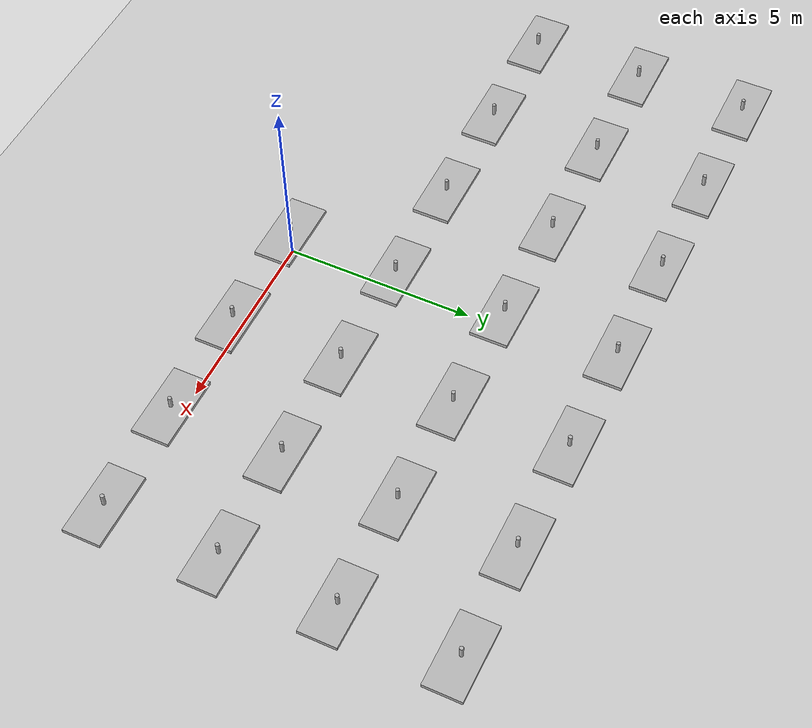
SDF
<sdf version="1.7">
 <world name="classroom_world">
  <model name="ground_plane">
   <static>1</static>
   <link name="link">
    <collision name="collision">
     <geometry><plane><normal>0 0 1</normal><size>100 100</size></plane></geometry>
     <surface><friction><ode><mu>100</mu><mu2>50</mu2></ode></friction></surface>
    </collision>
    <visual name="visual">
     <cast_shadows>0</cast_shadows>
     <geometry><plane><normal>0 0 1</normal><size>100 100</size></plane></geometry>
     <material>
      <script><uri>file://media/materials/scripts/gazebo.material</uri><name>Gazebo/Grey</name></script>
     </material>
    </visual>
   </link>
  </model>
  <model name="table_r4_c4">
   <static>1</static>
   <link name="link">
    <visual name="top"><geometry><box><size>2 1 0.1</size></box></geometry></visual>
    <collision name="top_col"><geometry><box><size>2 1 0.1</size></box></geometry></collision>
    <pose>0 0 0.75 0 -0 0</pose>
    <visual name="leg1">
     <geometry><cylinder><radius>0.05</radius><length>0.75</length></cylinder></geometry>
    </visual>
    <collision name="leg1_col">
     <geometry><cylinder><radius>0.05</radius><length>0.75</length></cylinder></geometry>
    </collision>
    <pose>-1 -0.5 0.375 0 -0 0</pose>
    <visual name="leg2">
     <geometry><cylinder><radius>0.05</radius><length>0.75</length></cylinder></geometry>
    </visual>
    <collision name="leg2_col">
     <geometry><cylinder><radius>0.05</radius><length>0.75</length></cylinder></geometry>
    </collision>
    <pose>1 -0.5 0.375 0 -0 0</pose>
    <visual name="leg3">
     <geometry><cylinder><radius>0.05</radius><length>0.75</length></cylinder></geometry>
    </visual>
    <collision name="leg3_col">
     <geometry><cylinder><radius>0.05</radius><length>0.75</length></cylinder></geometry>
    </collision>
    <pose>-1 0.5 0.375 0 -0 0</pose>
    <visual name="leg4">
     <geometry><cylinder><radius>0.05</radius><length>0.75</length></cylinder></geometry>
    </visual>
    <collision name="leg4_col">
     <geometry><cylinder><radius>0.05</radius><length>0.75</length></cylinder></geometry>
    </collision>
    <pose>1 0.5 0.375 0 -0 0</pose>
   </link>
  </model>
  <model name="table_r4_c5">
   <static>1</static>
   <link name="link">
    <visual name="top"><geometry><box><size>2 1 0.1</size></box></geometry></visual>
    <collision name="top_col"><geometry><box><size>2 1 0.1</size></box></geometry></collision>
    <pose>3 0 0.75 0 -0 0</pose>
    <visual name="leg1">
     <geometry><cylinder><radius>0.05</radius><length>0.75</length></cylinder></geometry>
    </visual>
    <collision name="leg1_col">
     <geometry><cylinder><radius>0.05</radius><length>0.75</length></cylinder></geometry>
    </collision>
    <pose>2 -0.5 0.375 0 -0 0</pose>
    <visual name="leg2">
     <geometry><cylinder><radius>0.05</radius><length>0.75</length></cylinder></geometry>
    </visual>
    <collision name="leg2_col">
     <geometry><cylinder><radius>0.05</radius><length>0.75</length></cylinder></geometry>
    </collision>
    <pose>4 -0.5 0.375 0 -0 0</pose>
    <visual name="leg3">
     <geometry><cylinder><radius>0.05</radius><length>0.75</length></cylinder></geometry>
    </visual>
    <collision name="leg3_col">
     <geometry><cylinder><radius>0.05</radius><length>0.75</length></cylinder></geometry>
    </collision>
    <pose>2 0.5 0.375 0 -0 0</pose>
    <visual name="leg4">
     <geometry><cylinder><radius>0.05</radius><length>0.75</length></cylinder></geometry>
    </visual>
    <collision name="leg4_col">
     <geometry><cylinder><radius>0.05</radius><length>0.75</length></cylinder></geometry>
    </collision>
    <pose>4 0.5 0.375 0 -0 0</pose>
   </link>
  </model>
  <model name="table_r4_c6">
   <static>1</static>
   <link name="link">
    <visual name="top"><geometry><box><size>2 1 0.1</size></box></geometry></visual>
    <collision name="top_col"><geometry><box><size>2 1 0.1</size></box></geometry></collision>
    <pose>6 0 0.75 0 -0 0</pose>
    <visual name="leg1">
     <geometry><cylinder><radius>0.05</radius><length>0.75</length></cylinder></geometry>
    </visual>
    <collision name="leg1_col">
     <geometry><cylinder><radius>0.05</radius><length>0.75</length></cylinder></geometry>
    </collision>
    <pose>5 -0.5 0.375 0 -0 0</pose>
    <visual name="leg2">
     <geometry><cylinder><radius>0.05</radius><length>0.75</length></cylinder></geometry>
    </visual>
    <collision name="leg2_col">
     <geometry><cylinder><radius>0.05</radius><length>0.75</length></cylinder></geometry>
    </collision>
    <pose>7 -0.5 0.375 0 -0 0</pose>
    <visual name="leg3">
     <geometry><cylinder><radius>0.05</radius><length>0.75</length></cylinder></geometry>
    </visual>
    <collision name="leg3_col">
     <geometry><cylinder><radius>0.05</radius><length>0.75</length></cylinder></geometry>
    </collision>
    <pose>5 0.5 0.375 0 -0 0</pose>
    <visual name="leg4">
     <geometry><cylinder><radius>0.05</radius><length>0.75</length></cylinder></geometry>
    </visual>
    <collision name="leg4_col">
     <geometry><cylinder><radius>0.05</radius><length>0.75</length></cylinder></geometry>
    </collision>
    <pose>7 0.5 0.375 0 -0 0</pose>
   </link>
  </model>
  <model name="table_r4_c7">
   <static>1</static>
   <link name="link">
    <visual name="top"><geometry><box><size>2 1 0.1</size></box></geometry></visual>
    <collision name="top_col"><geometry><box><size>2 1 0.1</size></box></geometry></collision>
    <pose>9 0 0.75 0 -0 0</pose>
    <visual name="leg1">
     <geometry><cylinder><radius>0.05</radius><length>0.75</length></cylinder></geometry>
    </visual>
    <collision name="leg1_col">
     <geometry><cylinder><radius>0.05</radius><length>0.75</length></cylinder></geometry>
    </collision>
    <pose>8 -0.5 0.375 0 -0 0</pose>
    <visual name="leg2">
     <geometry><cylinder><radius>0.05</radius><length>0.75</length></cylinder></geometry>
    </visual>
    <collision name="leg2_col">
     <geometry><cylinder><radius>0.05</radius><length>0.75</length></cylinder></geometry>
    </collision>
    <pose>10 -0.5 0.375 0 -0 0</pose>
    <visual name="leg3">
     <geometry><cylinder><radius>0.05</radius><length>0.75</length></cylinder></geometry>
    </visual>
    <collision name="leg3_col">
     <geometry><cylinder><radius>0.05</radius><length>0.75</length></cylinder></geometry>
    </collision>
    <pose>8 0.5 0.375 0 -0 0</pose>
    <visual name="leg4">
     <geometry><cylinder><radius>0.05</radius><length>0.75</length></cylinder></geometry>
    </visual>
    <collision name="leg4_col">
     <geometry><cylinder><radius>0.05</radius><length>0.75</length></cylinder></geometry>
    </collision>
    <pose>10 0.5 0.375 0 -0 0</pose>
   </link>
  </model>
  <model name="table_r5_c1">
   <static>1</static>
   <link name="link">
    <visual name="top"><geometry><box><size>2 1 0.1</size></box></geometry></visual>
    <collision name="top_col"><geometry><box><size>2 1 0.1</size></box></geometry></collision>
    <pose>-9 3 0.75 0 -0 0</pose>
    <visual name="leg1">
     <geometry><cylinder><radius>0.05</radius><length>0.75</length></cylinder></geometry>
    </visual>
    <collision name="leg1_col">
     <geometry><cylinder><radius>0.05</radius><length>0.75</length></cylinder></geometry>
    </collision>
    <pose>-10 2.5 0.375 0 -0 0</pose>
    <visual name="leg2">
     <geometry><cylinder><radius>0.05</radius><length>0.75</length></cylinder></geometry>
    </visual>
    <collision name="leg2_col">
     <geometry><cylinder><radius>0.05</radius><length>0.75</length></cylinder></geometry>
    </collision>
    <pose>-8 2.5 0.375 0 -0 0</pose>
    <visual name="leg3">
     <geometry><cylinder><radius>0.05</radius><length>0.75</length></cylinder></geometry>
    </visual>
    <collision name="leg3_col">
     <geometry><cylinder><radius>0.05</radius><length>0.75</length></cylinder></geometry>
    </collision>
    <pose>-10 3.5 0.375 0 -0 0</pose>
    <visual name="leg4">
     <geometry><cylinder><radius>0.05</radius><length>0.75</length></cylinder></geometry>
    </visual>
    <collision name="leg4_col">
     <geometry><cylinder><radius>0.05</radius><length>0.75</length></cylinder></geometry>
    </collision>
    <pose>-8 3.5 0.375 0 -0 0</pose>
   </link>
  </model>
  <model name="table_r5_c2">
   <static>1</static>
   <link name="link">
    <visual name="top"><geometry><box><size>2 1 0.1</size></box></geometry></visual>
    <collision name="top_col"><geometry><box><size>2 1 0.1</size></box></geometry></collision>
    <pose>-6 3 0.75 0 -0 0</pose>
    <visual name="leg1">
     <geometry><cylinder><radius>0.05</radius><length>0.75</length></cylinder></geometry>
    </visual>
    <collision name="leg1_col">
     <geometry><cylinder><radius>0.05</radius><length>0.75</length></cylinder></geometry>
    </collision>
    <pose>-7 2.5 0.375 0 -0 0</pose>
    <visual name="leg2">
     <geometry><cylinder><radius>0.05</radius><length>0.75</length></cylinder></geometry>
    </visual>
    <collision name="leg2_col">
     <geometry><cylinder><radius>0.05</radius><length>0.75</length></cylinder></geometry>
    </collision>
    <pose>-5 2.5 0.375 0 -0 0</pose>
    <visual name="leg3">
     <geometry><cylinder><radius>0.05</radius><length>0.75</length></cylinder></geometry>
    </visual>
    <collision name="leg3_col">
     <geometry><cylinder><radius>0.05</radius><length>0.75</length></cylinder></geometry>
    </collision>
    <pose>-7 3.5 0.375 0 -0 0</pose>
    <visual name="leg4">
     <geometry><cylinder><radius>0.05</radius><length>0.75</length></cylinder></geometry>
    </visual>
    <collision name="leg4_col">
     <geometry><cylinder><radius>0.05</radius><length>0.75</length></cylinder></geometry>
    </collision>
    <pose>-5 3.5 0.375 0 -0 0</pose>
   </link>
  </model>
  <model name="table_r5_c3">
   <static>1</static>
   <link name="link">
    <visual name="top"><geometry><box><size>2 1 0.1</size></box></geometry></visual>
    <collision name="top_col"><geometry><box><size>2 1 0.1</size></box></geometry></collision>
    <pose>-3 3 0.75 0 -0 0</pose>
    <visual name="leg1">
     <geometry><cylinder><radius>0.05</radius><length>0.75</length></cylinder></geometry>
    </visual>
    <collision name="leg1_col">
     <geometry><cylinder><radius>0.05</radius><length>0.75</length></cylinder></geometry>
    </collision>
    <pose>-4 2.5 0.375 0 -0 0</pose>
    <visual name="leg2">
     <geometry><cylinder><radius>0.05</radius><length>0.75</length></cylinder></geometry>
    </visual>
    <collision name="leg2_col">
     <geometry><cylinder><radius>0.05</radius><length>0.75</length></cylinder></geometry>
    </collision>
    <pose>-2 2.5 0.375 0 -0 0</pose>
    <visual name="leg3">
     <geometry><cylinder><radius>0.05</radius><length>0.75</length></cylinder></geometry>
    </visual>
    <collision name="leg3_col">
     <geometry><cylinder><radius>0.05</radius><length>0.75</length></cylinder></geometry>
    </collision>
    <pose>-4 3.5 0.375 0 -0 0</pose>
    <visual name="leg4">
     <geometry><cylinder><radius>0.05</radius><length>0.75</length></cylinder></geometry>
    </visual>
    <collision name="leg4_col">
     <geometry><cylinder><radius>0.05</radius><length>0.75</length></cylinder></geometry>
    </collision>
    <pose>-2 3.5 0.375 0 -0 0</pose>
   </link>
  </model>
  <model name="table_r5_c4">
   <static>1</static>
   <link name="link">
    <visual name="top"><geometry><box><size>2 1 0.1</size></box></geometry></visual>
    <collision name="top_col"><geometry><box><size>2 1 0.1</size></box></geometry></collision>
    <pose>0 3 0.75 0 -0 0</pose>
    <visual name="leg1">
     <geometry><cylinder><radius>0.05</radius><length>0.75</length></cylinder></geometry>
    </visual>
    <collision name="leg1_col">
     <geometry><cylinder><radius>0.05</radius><length>0.75</length></cylinder></geometry>
    </collision>
    <pose>-1 2.5 0.375 0 -0 0</pose>
    <visual name="leg2">
     <geometry><cylinder><radius>0.05</radius><length>0.75</length></cylinder></geometry>
    </visual>
    <collision name="leg2_col">
     <geometry><cylinder><radius>0.05</radius><length>0.75</length></cylinder></geometry>
    </collision>
    <pose>1 2.5 0.375 0 -0 0</pose>
    <visual name="leg3">
     <geometry><cylinder><radius>0.05</radius><length>0.75</length></cylinder></geometry>
    </visual>
    <collision name="leg3_col">
     <geometry><cylinder><radius>0.05</radius><length>0.75</length></cylinder></geometry>
    </collision>
    <pose>-1 3.5 0.375 0 -0 0</pose>
    <visual name="leg4">
     <geometry><cylinder><radius>0.05</radius><length>0.75</length></cylinder></geometry>
    </visual>
    <collision name="leg4_col">
     <geometry><cylinder><radius>0.05</radius><length>0.75</length></cylinder></geometry>
    </collision>
    <pose>1 3.5 0.375 0 -0 0</pose>
   </link>
  </model>
  <model name="table_r5_c5">
   <static>1</static>
   <link name="link">
    <visual name="top"><geometry><box><size>2 1 0.1</size></box></geometry></visual>
    <collision name="top_col"><geometry><box><size>2 1 0.1</size></box></geometry></collision>
    <pose>3 3 0.75 0 -0 0</pose>
    <visual name="leg1">
     <geometry><cylinder><radius>0.05</radius><length>0.75</length></cylinder></geometry>
    </visual>
    <collision name="leg1_col">
     <geometry><cylinder><radius>0.05</radius><length>0.75</length></cylinder></geometry>
    </collision>
    <pose>2 2.5 0.375 0 -0 0</pose>
    <visual name="leg2">
     <geometry><cylinder><radius>0.05</radius><length>0.75</length></cylinder></geometry>
    </visual>
    <collision name="leg2_col">
     <geometry><cylinder><radius>0.05</radius><length>0.75</length></cylinder></geometry>
    </collision>
    <pose>4 2.5 0.375 0 -0 0</pose>
    <visual name="leg3">
     <geometry><cylinder><radius>0.05</radius><length>0.75</length></cylinder></geometry>
    </visual>
    <collision name="leg3_col">
     <geometry><cylinder><radius>0.05</radius><length>0.75</length></cylinder></geometry>
    </collision>
    <pose>2 3.5 0.375 0 -0 0</pose>
    <visual name="leg4">
     <geometry><cylinder><radius>0.05</radius><length>0.75</length></cylinder></geometry>
    </visual>
    <collision name="leg4_col">
     <geometry><cylinder><radius>0.05</radius><length>0.75</length></cylinder></geometry>
    </collision>
    <pose>4 3.5 0.375 0 -0 0</pose>
   </link>
  </model>
  <model name="table_r5_c6">
   <static>1</static>
   <link name="link">
    <visual name="top"><geometry><box><size>2 1 0.1</size></box></geometry></visual>
    <collision name="top_col"><geometry><box><size>2 1 0.1</size></box></geometry></collision>
    <pose>6 3 0.75 0 -0 0</pose>
    <visual name="leg1">
     <geometry><cylinder><radius>0.05</radius><length>0.75</length></cylinder></geometry>
    </visual>
    <collision name="leg1_col">
     <geometry><cylinder><radius>0.05</radius><length>0.75</length></cylinder></geometry>
    </collision>
    <pose>5 2.5 0.375 0 -0 0</pose>
    <visual name="leg2">
     <geometry><cylinder><radius>0.05</radius><length>0.75</length></cylinder></geometry>
    </visual>
    <collision name="leg2_col">
     <geometry><cylinder><radius>0.05</radius><length>0.75</length></cylinder></geometry>
    </collision>
    <pose>7 2.5 0.375 0 -0 0</pose>
    <visual name="leg3">
     <geometry><cylinder><radius>0.05</radius><length>0.75</length></cylinder></geometry>
    </visual>
    <collision name="leg3_col">
     <geometry><cylinder><radius>0.05</radius><length>0.75</length></cylinder></geometry>
    </collision>
    <pose>5 3.5 0.375 0 -0 0</pose>
    <visual name="leg4">
     <geometry><cylinder><radius>0.05</radius><length>0.75</length></cylinder></geometry>
    </visual>
    <collision name="leg4_col">
     <geometry><cylinder><radius>0.05</radius><length>0.75</length></cylinder></geometry>
    </collision>
    <pose>7 3.5 0.375 0 -0 0</pose>
   </link>
  </model>
  <model name="table_r5_c7">
   <static>1</static>
   <link name="link">
    <visual name="top"><geometry><box><size>2 1 0.1</size></box></geometry></visual>
    <collision name="top_col"><geometry><box><size>2 1 0.1</size></box></geometry></collision>
    <pose>9 3 0.75 0 -0 0</pose>
    <visual name="leg1">
     <geometry><cylinder><radius>0.05</radius><length>0.75</length></cylinder></geometry>
    </visual>
    <collision name="leg1_col">
     <geometry><cylinder><radius>0.05</radius><length>0.75</length></cylinder></geometry>
    </collision>
    <pose>8 2.5 0.375 0 -0 0</pose>
    <visual name="leg2">
     <geometry><cylinder><radius>0.05</radius><length>0.75</length></cylinder></geometry>
    </visual>
    <collision name="leg2_col">
     <geometry><cylinder><radius>0.05</radius><length>0.75</length></cylinder></geometry>
    </collision>
    <pose>10 2.5 0.375 0 -0 0</pose>
    <visual name="leg3">
     <geometry><cylinder><radius>0.05</radius><length>0.75</length></cylinder></geometry>
    </visual>
    <collision name="leg3_col">
     <geometry><cylinder><radius>0.05</radius><length>0.75</length></cylinder></geometry>
    </collision>
    <pose>8 3.5 0.375 0 -0 0</pose>
    <visual name="leg4">
     <geometry><cylinder><radius>0.05</radius><length>0.75</length></cylinder></geometry>
    </visual>
    <collision name="leg4_col">
     <geometry><cylinder><radius>0.05</radius><length>0.75</length></cylinder></geometry>
    </collision>
    <pose>10 3.5 0.375 0 -0 0</pose>
   </link>
  </model>
  <model name="table_r6_c1">
   <static>1</static>
   <link name="link">
    <visual name="top"><geometry><box><size>2 1 0.1</size></box></geometry></visual>
    <collision name="top_col"><geometry><box><size>2 1 0.1</size></box></geometry></collision>
    <pose>-9 6 0.75 0 -0 0</pose>
    <visual name="leg1">
     <geometry><cylinder><radius>0.05</radius><length>0.75</length></cylinder></geometry>
    </visual>
    <collision name="leg1_col">
     <geometry><cylinder><radius>0.05</radius><length>0.75</length></cylinder></geometry>
    </collision>
    <pose>-10 5.5 0.375 0 -0 0</pose>
    <visual name="leg2">
     <geometry><cylinder><radius>0.05</radius><length>0.75</length></cylinder></geometry>
    </visual>
    <collision name="leg2_col">
     <geometry><cylinder><radius>0.05</radius><length>0.75</length></cylinder></geometry>
    </collision>
    <pose>-8 5.5 0.375 0 -0 0</pose>
    <visual name="leg3">
     <geometry><cylinder><radius>0.05</radius><length>0.75</length></cylinder></geometry>
    </visual>
    <collision name="leg3_col">
     <geometry><cylinder><radius>0.05</radius><length>0.75</length></cylinder></geometry>
    </collision>
    <pose>-10 6.5 0.375 0 -0 0</pose>
    <visual name="leg4">
     <geometry><cylinder><radius>0.05</radius><length>0.75</length></cylinder></geometry>
    </visual>
    <collision name="leg4_col">
     <geometry><cylinder><radius>0.05</radius><length>0.75</length></cylinder></geometry>
    </collision>
    <pose>-8 6.5 0.375 0 -0 0</pose>
   </link>
  </model>
  <model name="table_r6_c2">
   <static>1</static>
   <link name="link">
    <visual name="top"><geometry><box><size>2 1 0.1</size></box></geometry></visual>
    <collision name="top_col"><geometry><box><size>2 1 0.1</size></box></geometry></collision>
    <pose>-6 6 0.75 0 -0 0</pose>
    <visual name="leg1">
     <geometry><cylinder><radius>0.05</radius><length>0.75</length></cylinder></geometry>
    </visual>
    <collision name="leg1_col">
     <geometry><cylinder><radius>0.05</radius><length>0.75</length></cylinder></geometry>
    </collision>
    <pose>-7 5.5 0.375 0 -0 0</pose>
    <visual name="leg2">
     <geometry><cylinder><radius>0.05</radius><length>0.75</length></cylinder></geometry>
    </visual>
    <collision name="leg2_col">
     <geometry><cylinder><radius>0.05</radius><length>0.75</length></cylinder></geometry>
    </collision>
    <pose>-5 5.5 0.375 0 -0 0</pose>
    <visual name="leg3">
     <geometry><cylinder><radius>0.05</radius><length>0.75</length></cylinder></geometry>
    </visual>
    <collision name="leg3_col">
     <geometry><cylinder><radius>0.05</radius><length>0.75</length></cylinder></geometry>
    </collision>
    <pose>-7 6.5 0.375 0 -0 0</pose>
    <visual name="leg4">
     <geometry><cylinder><radius>0.05</radius><length>0.75</length></cylinder></geometry>
    </visual>
    <collision name="leg4_col">
     <geometry><cylinder><radius>0.05</radius><length>0.75</length></cylinder></geometry>
    </collision>
    <pose>-5 6.5 0.375 0 -0 0</pose>
   </link>
  </model>
  <model name="table_r6_c3">
   <static>1</static>
   <link name="link">
    <visual name="top"><geometry><box><size>2 1 0.1</size></box></geometry></visual>
    <collision name="top_col"><geometry><box><size>2 1 0.1</size></box></geometry></collision>
    <pose>-3 6 0.75 0 -0 0</pose>
    <visual name="leg1">
     <geometry><cylinder><radius>0.05</radius><length>0.75</length></cylinder></geometry>
    </visual>
    <collision name="leg1_col">
     <geometry><cylinder><radius>0.05</radius><length>0.75</length></cylinder></geometry>
    </collision>
    <pose>-4 5.5 0.375 0 -0 0</pose>
    <visual name="leg2">
     <geometry><cylinder><radius>0.05</radius><length>0.75</length></cylinder></geometry>
    </visual>
    <collision name="leg2_col">
     <geometry><cylinder><radius>0.05</radius><length>0.75</length></cylinder></geometry>
    </collision>
    <pose>-2 5.5 0.375 0 -0 0</pose>
    <visual name="leg3">
     <geometry><cylinder><radius>0.05</radius><length>0.75</length></cylinder></geometry>
    </visual>
    <collision name="leg3_col">
     <geometry><cylinder><radius>0.05</radius><length>0.75</length></cylinder></geometry>
    </collision>
    <pose>-4 6.5 0.375 0 -0 0</pose>
    <visual name="leg4">
     <geometry><cylinder><radius>0.05</radius><length>0.75</length></cylinder></geometry>
    </visual>
    <collision name="leg4_col">
     <geometry><cylinder><radius>0.05</radius><length>0.75</length></cylinder></geometry>
    </collision>
    <pose>-2 6.5 0.375 0 -0 0</pose>
   </link>
  </model>
  <model name="table_r6_c4">
   <static>1</static>
   <link name="link">
    <visual name="top"><geometry><box><size>2 1 0.1</size></box></geometry></visual>
    <collision name="top_col"><geometry><box><size>2 1 0.1</size></box></geometry></collision>
    <pose>0 6 0.75 0 -0 0</pose>
    <visual name="leg1">
     <geometry><cylinder><radius>0.05</radius><length>0.75</length></cylinder></geometry>
    </visual>
    <collision name="leg1_col">
     <geometry><cylinder><radius>0.05</radius><length>0.75</length></cylinder></geometry>
    </collision>
    <pose>-1 5.5 0.375 0 -0 0</pose>
    <visual name="leg2">
     <geometry><cylinder><radius>0.05</radius><length>0.75</length></cylinder></geometry>
    </visual>
    <collision name="leg2_col">
     <geometry><cylinder><radius>0.05</radius><length>0.75</length></cylinder></geometry>
    </collision>
    <pose>1 5.5 0.375 0 -0 0</pose>
    <visual name="leg3">
     <geometry><cylinder><radius>0.05</radius><length>0.75</length></cylinder></geometry>
    </visual>
    <collision name="leg3_col">
     <geometry><cylinder><radius>0.05</radius><length>0.75</length></cylinder></geometry>
    </collision>
    <pose>-1 6.5 0.375 0 -0 0</pose>
    <visual name="leg4">
     <geometry><cylinder><radius>0.05</radius><length>0.75</length></cylinder></geometry>
    </visual>
    <collision name="leg4_col">
     <geometry><cylinder><radius>0.05</radius><length>0.75</length></cylinder></geometry>
    </collision>
    <pose>1 6.5 0.375 0 -0 0</pose>
   </link>
  </model>
  <model name="table_r6_c5">
   <static>1</static>
   <link name="link">
    <visual name="top"><geometry><box><size>2 1 0.1</size></box></geometry></visual>
    <collision name="top_col"><geometry><box><size>2 1 0.1</size></box></geometry></collision>
    <pose>3 6 0.75 0 -0 0</pose>
    <visual name="leg1">
     <geometry><cylinder><radius>0.05</radius><length>0.75</length></cylinder></geometry>
    </visual>
    <collision name="leg1_col">
     <geometry><cylinder><radius>0.05</radius><length>0.75</length></cylinder></geometry>
    </collision>
    <pose>2 5.5 0.375 0 -0 0</pose>
    <visual name="leg2">
     <geometry><cylinder><radius>0.05</radius><length>0.75</length></cylinder></geometry>
    </visual>
    <collision name="leg2_col">
     <geometry><cylinder><radius>0.05</radius><length>0.75</length></cylinder></geometry>
    </collision>
    <pose>4 5.5 0.375 0 -0 0</pose>
    <visual name="leg3">
     <geometry><cylinder><radius>0.05</radius><length>0.75</length></cylinder></geometry>
    </visual>
    <collision name="leg3_col">
     <geometry><cylinder><radius>0.05</radius><length>0.75</length></cylinder></geometry>
    </collision>
    <pose>2 6.5 0.375 0 -0 0</pose>
    <visual name="leg4">
     <geometry><cylinder><radius>0.05</radius><length>0.75</length></cylinder></geometry>
    </visual>
    <collision name="leg4_col">
     <geometry><cylinder><radius>0.05</radius><length>0.75</length></cylinder></geometry>
    </collision>
    <pose>4 6.5 0.375 0 -0 0</pose>
   </link>
  </model>
  <model name="table_r6_c6">
   <static>1</static>
   <link name="link">
    <visual name="top"><geometry><box><size>2 1 0.1</size></box></geometry></visual>
    <collision name="top_col"><geometry><box><size>2 1 0.1</size></box></geometry></collision>
    <pose>6 6 0.75 0 -0 0</pose>
    <visual name="leg1">
     <geometry><cylinder><radius>0.05</radius><length>0.75</length></cylinder></geometry>
    </visual>
    <collision name="leg1_col">
     <geometry><cylinder><radius>0.05</radius><length>0.75</length></cylinder></geometry>
    </collision>
    <pose>5 5.5 0.375 0 -0 0</pose>
    <visual name="leg2">
     <geometry><cylinder><radius>0.05</radius><length>0.75</length></cylinder></geometry>
    </visual>
    <collision name="leg2_col">
     <geometry><cylinder><radius>0.05</radius><length>0.75</length></cylinder></geometry>
    </collision>
    <pose>7 5.5 0.375 0 -0 0</pose>
    <visual name="leg3">
     <geometry><cylinder><radius>0.05</radius><length>0.75</length></cylinder></geometry>
    </visual>
    <collision name="leg3_col">
     <geometry><cylinder><radius>0.05</radius><length>0.75</length></cylinder></geometry>
    </collision>
    <pose>5 6.5 0.375 0 -0 0</pose>
    <visual name="leg4">
     <geometry><cylinder><radius>0.05</radius><length>0.75</length></cylinder></geometry>
    </visual>
    <collision name="leg4_col">
     <geometry><cylinder><radius>0.05</radius><length>0.75</length></cylinder></geometry>
    </collision>
    <pose>7 6.5 0.375 0 -0 0</pose>
   </link>
  </model>
  <model name="table_r6_c7">
   <static>1</static>
   <link name="link">
    <visual name="top"><geometry><box><size>2 1 0.1</size></box></geometry></visual>
    <collision name="top_col"><geometry><box><size>2 1 0.1</size></box></geometry></collision>
    <pose>9 6 0.75 0 -0 0</pose>
    <visual name="leg1">
     <geometry><cylinder><radius>0.05</radius><length>0.75</length></cylinder></geometry>
    </visual>
    <collision name="leg1_col">
     <geometry><cylinder><radius>0.05</radius><length>0.75</length></cylinder></geometry>
    </collision>
    <pose>8 5.5 0.375 0 -0 0</pose>
    <visual name="leg2">
     <geometry><cylinder><radius>0.05</radius><length>0.75</length></cylinder></geometry>
    </visual>
    <collision name="leg2_col">
     <geometry><cylinder><radius>0.05</radius><length>0.75</length></cylinder></geometry>
    </collision>
    <pose>10 5.5 0.375 0 -0 0</pose>
    <visual name="leg3">
     <geometry><cylinder><radius>0.05</radius><length>0.75</length></cylinder></geometry>
    </visual>
    <collision name="leg3_col">
     <geometry><cylinder><radius>0.05</radius><length>0.75</length></cylinder></geometry>
    </collision>
    <pose>8 6.5 0.375 0 -0 0</pose>
    <visual name="leg4">
     <geometry><cylinder><radius>0.05</radius><length>0.75</length></cylinder></geometry>
    </visual>
    <collision name="leg4_col">
     <geometry><cylinder><radius>0.05</radius><length>0.75</length></cylinder></geometry>
    </collision>
    <pose>10 6.5 0.375 0 -0 0</pose>
   </link>
  </model>
  <model name="table_r7_c1">
   <static>1</static>
   <link name="link">
    <visual name="top"><geometry><box><size>2 1 0.1</size></box></geometry></visual>
    <collision name="top_col"><geometry><box><size>2 1 0.1</size></box></geometry></collision>
    <pose>-9 9 0.75 0 -0 0</pose>
    <visual name="leg1">
     <geometry><cylinder><radius>0.05</radius><length>0.75</length></cylinder></geometry>
    </visual>
    <collision name="leg1_col">
     <geometry><cylinder><radius>0.05</radius><length>0.75</length></cylinder></geometry>
    </collision>
    <pose>-10 8.5 0.375 0 -0 0</pose>
    <visual name="leg2">
     <geometry><cylinder><radius>0.05</radius><length>0.75</length></cylinder></geometry>
    </visual>
    <collision name="leg2_col">
     <geometry><cylinder><radius>0.05</radius><length>0.75</length></cylinder></geometry>
    </collision>
    <pose>-8 8.5 0.375 0 -0 0</pose>
    <visual name="leg3">
     <geometry><cylinder><radius>0.05</radius><length>0.75</length></cylinder></geometry>
    </visual>
    <collision name="leg3_col">
     <geometry><cylinder><radius>0.05</radius><length>0.75</length></cylinder></geometry>
    </collision>
    <pose>-10 9.5 0.375 0 -0 0</pose>
    <visual name="leg4">
     <geometry><cylinder><radius>0.05</radius><length>0.75</length></cylinder></geometry>
    </visual>
    <collision name="leg4_col">
     <geometry><cylinder><radius>0.05</radius><length>0.75</length></cylinder></geometry>
    </collision>
    <pose>-8 9.5 0.375 0 -0 0</pose>
   </link>
  </model>
  <model name="table_r7_c2">
   <static>1</static>
   <link name="link">
    <visual name="top"><geometry><box><size>2 1 0.1</size></box></geometry></visual>
    <collision name="top_col"><geometry><box><size>2 1 0.1</size></box></geometry></collision>
    <pose>-6 9 0.75 0 -0 0</pose>
    <visual name="leg1">
     <geometry><cylinder><radius>0.05</radius><length>0.75</length></cylinder></geometry>
    </visual>
    <collision name="leg1_col">
     <geometry><cylinder><radius>0.05</radius><length>0.75</length></cylinder></geometry>
    </collision>
    <pose>-7 8.5 0.375 0 -0 0</pose>
    <visual name="leg2">
     <geometry><cylinder><radius>0.05</radius><length>0.75</length></cylinder></geometry>
    </visual>
    <collision name="leg2_col">
     <geometry><cylinder><radius>0.05</radius><length>0.75</length></cylinder></geometry>
    </collision>
    <pose>-5 8.5 0.375 0 -0 0</pose>
    <visual name="leg3">
     <geometry><cylinder><radius>0.05</radius><length>0.75</length></cylinder></geometry>
    </visual>
    <collision name="leg3_col">
     <geometry><cylinder><radius>0.05</radius><length>0.75</length></cylinder></geometry>
    </collision>
    <pose>-7 9.5 0.375 0 -0 0</pose>
    <visual name="leg4">
     <geometry><cylinder><radius>0.05</radius><length>0.75</length></cylinder></geometry>
    </visual>
    <collision name="leg4_col">
     <geometry><cylinder><radius>0.05</radius><length>0.75</length></cylinder></geometry>
    </collision>
    <pose>-5 9.5 0.375 0 -0 0</pose>
   </link>
  </model>
  <model name="table_r7_c3">
   <static>1</static>
   <link name="link">
    <visual name="top"><geometry><box><size>2 1 0.1</size></box></geometry></visual>
    <collision name="top_col"><geometry><box><size>2 1 0.1</size></box></geometry></collision>
    <pose>-3 9 0.75 0 -0 0</pose>
    <visual name="leg1">
     <geometry><cylinder><radius>0.05</radius><length>0.75</length></cylinder></geometry>
    </visual>
    <collision name="leg1_col">
     <geometry><cylinder><radius>0.05</radius><length>0.75</length></cylinder></geometry>
    </collision>
    <pose>-4 8.5 0.375 0 -0 0</pose>
    <visual name="leg2">
     <geometry><cylinder><radius>0.05</radius><length>0.75</length></cylinder></geometry>
    </visual>
    <collision name="leg2_col">
     <geometry><cylinder><radius>0.05</radius><length>0.75</length></cylinder></geometry>
    </collision>
    <pose>-2 8.5 0.375 0 -0 0</pose>
    <visual name="leg3">
     <geometry><cylinder><radius>0.05</radius><length>0.75</length></cylinder></geometry>
    </visual>
    <collision name="leg3_col">
     <geometry><cylinder><radius>0.05</radius><length>0.75</length></cylinder></geometry>
    </collision>
    <pose>-4 9.5 0.375 0 -0 0</pose>
    <visual name="leg4">
     <geometry><cylinder><radius>0.05</radius><length>0.75</length></cylinder></geometry>
    </visual>
    <collision name="leg4_col">
     <geometry><cylinder><radius>0.05</radius><length>0.75</length></cylinder></geometry>
    </collision>
    <pose>-2 9.5 0.375 0 -0 0</pose>
   </link>
  </model>
  <model name="table_r7_c4">
   <static>1</static>
   <link name="link">
    <visual name="top"><geometry><box><size>2 1 0.1</size></box></geometry></visual>
    <collision name="top_col"><geometry><box><size>2 1 0.1</size></box></geometry></collision>
    <pose>0 9 0.75 0 -0 0</pose>
    <visual name="leg1">
     <geometry><cylinder><radius>0.05</radius><length>0.75</length></cylinder></geometry>
    </visual>
    <collision name="leg1_col">
     <geometry><cylinder><radius>0.05</radius><length>0.75</length></cylinder></geometry>
    </collision>
    <pose>-1 8.5 0.375 0 -0 0</pose>
    <visual name="leg2">
     <geometry><cylinder><radius>0.05</radius><length>0.75</length></cylinder></geometry>
    </visual>
    <collision name="leg2_col">
     <geometry><cylinder><radius>0.05</radius><length>0.75</length></cylinder></geometry>
    </collision>
    <pose>1 8.5 0.375 0 -0 0</pose>
    <visual name="leg3">
     <geometry><cylinder><radius>0.05</radius><length>0.75</length></cylinder></geometry>
    </visual>
    <collision name="leg3_col">
     <geometry><cylinder><radius>0.05</radius><length>0.75</length></cylinder></geometry>
    </collision>
    <pose>-1 9.5 0.375 0 -0 0</pose>
    <visual name="leg4">
     <geometry><cylinder><radius>0.05</radius><length>0.75</length></cylinder></geometry>
    </visual>
    <collision name="leg4_col">
     <geometry><cylinder><radius>0.05</radius><length>0.75</length></cylinder></geometry>
    </collision>
    <pose>1 9.5 0.375 0 -0 0</pose>
   </link>
  </model>
  <model name="table_r7_c5">
   <static>1</static>
   <link name="link">
    <visual name="top"><geometry><box><size>2 1 0.1</size></box></geometry></visual>
    <collision name="top_col"><geometry><box><size>2 1 0.1</size></box></geometry></collision>
    <pose>3 9 0.75 0 -0 0</pose>
    <visual name="leg1">
     <geometry><cylinder><radius>0.05</radius><length>0.75</length></cylinder></geometry>
    </visual>
    <collision name="leg1_col">
     <geometry><cylinder><radius>0.05</radius><length>0.75</length></cylinder></geometry>
    </collision>
    <pose>2 8.5 0.375 0 -0 0</pose>
    <visual name="leg2">
     <geometry><cylinder><radius>0.05</radius><length>0.75</length></cylinder></geometry>
    </visual>
    <collision name="leg2_col">
     <geometry><cylinder><radius>0.05</radius><length>0.75</length></cylinder></geometry>
    </collision>
    <pose>4 8.5 0.375 0 -0 0</pose>
    <visual name="leg3">
     <geometry><cylinder><radius>0.05</radius><length>0.75</length></cylinder></geometry>
    </visual>
    <collision name="leg3_col">
     <geometry><cylinder><radius>0.05</radius><length>0.75</length></cylinder></geometry>
    </collision>
    <pose>2 9.5 0.375 0 -0 0</pose>
    <visual name="leg4">
     <geometry><cylinder><radius>0.05</radius><length>0.75</length></cylinder></geometry>
    </visual>
    <collision name="leg4_col">
     <geometry><cylinder><radius>0.05</radius><length>0.75</length></cylinder></geometry>
    </collision>
    <pose>4 9.5 0.375 0 -0 0</pose>
   </link>
  </model>
  <model name="table_r7_c6">
   <static>1</static>
   <link name="link">
    <visual name="top"><geometry><box><size>2 1 0.1</size></box></geometry></visual>
    <collision name="top_col"><geometry><box><size>2 1 0.1</size></box></geometry></collision>
    <pose>6 9 0.75 0 -0 0</pose>
    <visual name="leg1">
     <geometry><cylinder><radius>0.05</radius><length>0.75</length></cylinder></geometry>
    </visual>
    <collision name="leg1_col">
     <geometry><cylinder><radius>0.05</radius><length>0.75</length></cylinder></geometry>
    </collision>
    <pose>5 8.5 0.375 0 -0 0</pose>
    <visual name="leg2">
     <geometry><cylinder><radius>0.05</radius><length>0.75</length></cylinder></geometry>
    </visual>
    <collision name="leg2_col">
     <geometry><cylinder><radius>0.05</radius><length>0.75</length></cylinder></geometry>
    </collision>
    <pose>7 8.5 0.375 0 -0 0</pose>
    <visual name="leg3">
     <geometry><cylinder><radius>0.05</radius><length>0.75</length></cylinder></geometry>
    </visual>
    <collision name="leg3_col">
     <geometry><cylinder><radius>0.05</radius><length>0.75</length></cylinder></geometry>
    </collision>
    <pose>5 9.5 0.375 0 -0 0</pose>
    <visual name="leg4">
     <geometry><cylinder><radius>0.05</radius><length>0.75</length></cylinder></geometry>
    </visual>
    <collision name="leg4_col">
     <geometry><cylinder><radius>0.05</radius><length>0.75</length></cylinder></geometry>
    </collision>
    <pose>7 9.5 0.375 0 -0 0</pose>
   </link>
  </model>
  <model name="table_r7_c7">
   <static>1</static>
   <link name="link">
    <visual name="top"><geometry><box><size>2 1 0.1</size></box></geometry></visual>
    <collision name="top_col"><geometry><box><size>2 1 0.1</size></box></geometry></collision>
    <pose>9 9 0.75 0 -0 0</pose>
    <visual name="leg1">
     <geometry><cylinder><radius>0.05</radius><length>0.75</length></cylinder></geometry>
    </visual>
    <collision name="leg1_col">
     <geometry><cylinder><radius>0.05</radius><length>0.75</length></cylinder></geometry>
    </collision>
    <pose>8 8.5 0.375 0 -0 0</pose>
    <visual name="leg2">
     <geometry><cylinder><radius>0.05</radius><length>0.75</length></cylinder></geometry>
    </visual>
    <collision name="leg2_col">
     <geometry><cylinder><radius>0.05</radius><length>0.75</length></cylinder></geometry>
    </collision>
    <pose>10 8.5 0.375 0 -0 0</pose>
    <visual name="leg3">
     <geometry><cylinder><radius>0.05</radius><length>0.75</length></cylinder></geometry>
    </visual>
    <collision name="leg3_col">
     <geometry><cylinder><radius>0.05</radius><length>0.75</length></cylinder></geometry>
    </collision>
    <pose>8 9.5 0.375 0 -0 0</pose>
    <visual name="leg4">
     <geometry><cylinder><radius>0.05</radius><length>0.75</length></cylinder></geometry>
    </visual>
    <collision name="leg4_col">
     <geometry><cylinder><radius>0.05</radius><length>0.75</length></cylinder></geometry>
    </collision>
    <pose>10 9.5 0.375 0 -0 0</pose>
   </link>
  </model>
 </world>
</sdf>
